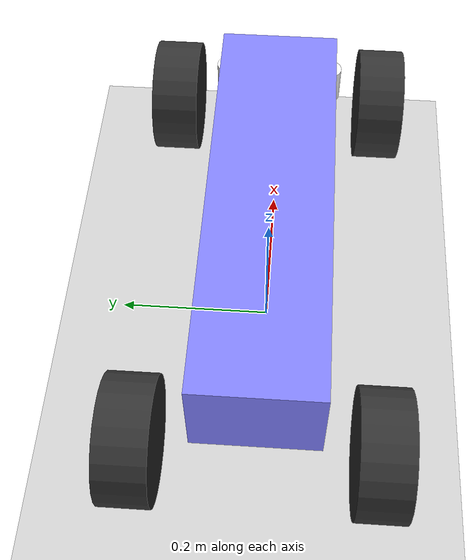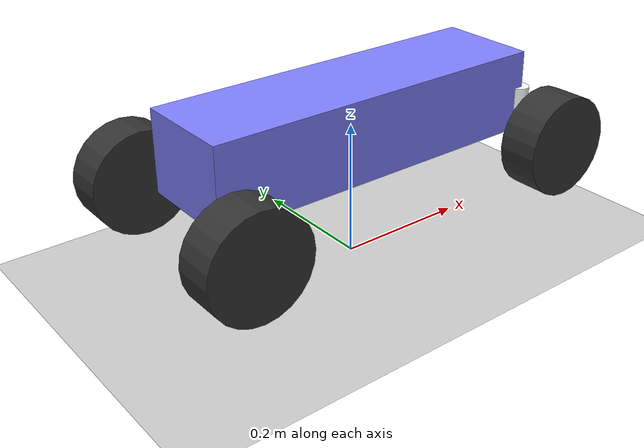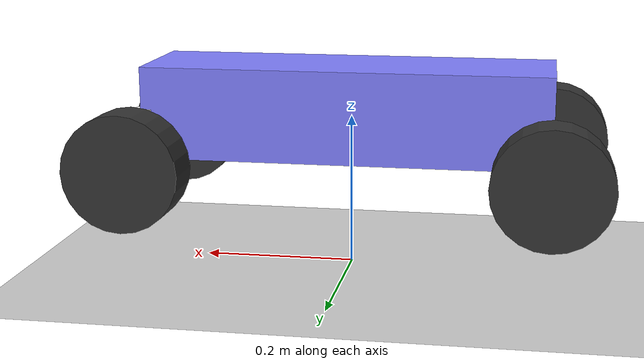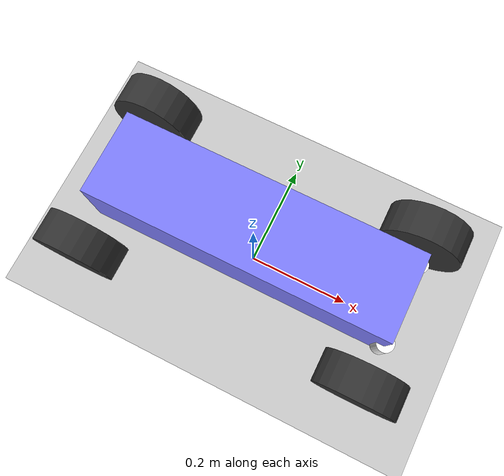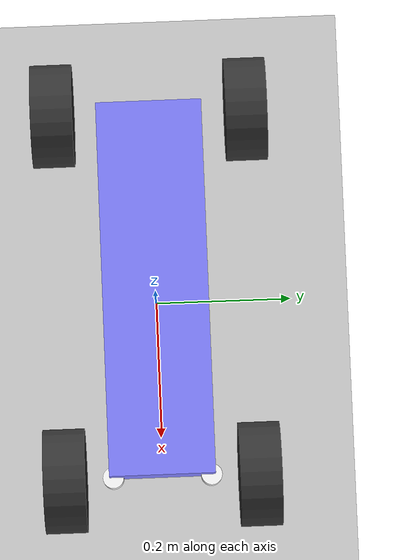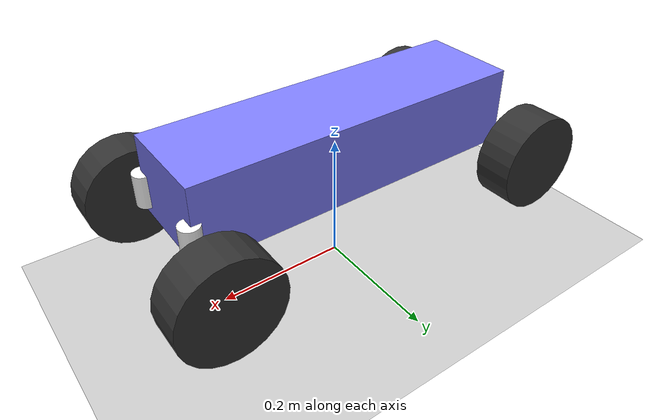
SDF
<?xml version="1.0" ?>
<sdf version="1.6">
  <world name="ackermann_steering">

    <physics name="1ms" type="ignored">
      <max_step_size>0.001</max_step_size>
      <real_time_factor>1.0</real_time_factor>
    </physics>
    <plugin
      filename="ignition-gazebo-physics-system"
      name="gz::sim::systems::Physics">
    </plugin>
    <plugin
      filename="ignition-gazebo-user-commands-system"
      name="gz::sim::systems::UserCommands">
    </plugin>
    <plugin
      filename="ignition-gazebo-scene-broadcaster-system"
      name="gz::sim::systems::SceneBroadcaster">
    </plugin>

    <light type="directional" name="sun">
      <cast_shadows>true</cast_shadows>
      <pose>0 0 10 0 0 0</pose>
      <diffuse>1 1 1 1</diffuse>
      <specular>0.5 0.5 0.5 1</specular>
      <attenuation>
        <range>1000</range>
        <constant>0.9</constant>
        <linear>0.01</linear>
        <quadratic>0.001</quadratic>
      </attenuation>
      <direction>-0.5 0.1 -0.9</direction>
    </light>

    <model name="ground_plane">
      <static>true</static>
      <link name="link">
        <collision name="collision">
          <geometry>
            <plane>
              <normal>0 0 1</normal>
              <size>100 100</size>
            </plane>
          </geometry>
          <surface>
            <friction>
              <ode>
                <mu>50</mu>
              </ode>
            </friction>
          </surface>
        </collision>
        <visual name="visual">
          <geometry>
            <plane>
              <normal>0 0 1</normal>
              <size>100 100</size>
            </plane>
          </geometry>
          <material>
            <ambient>0.8 0.8 0.8 1</ambient>
            <diffuse>0.8 0.8 0.8 1</diffuse>
            <specular>0.8 0.8 0.8 1</specular>
          </material>
        </visual>
      </link>
    </model>

    <model name='JetTec'>
      <pose>0 0 0.15 0 -0 0</pose>

      <link name='chassis'>
        <pose>0 -0 0.06 0 -0 0</pose>
        <inertial>
          <mass>2.5</mass>
          <inertia>
            <ixx>0.126164</ixx>
            <ixy>0</ixy>
            <ixz>0</ixz>
            <iyy>0.416519</iyy>
            <iyz>0</iyz>
            <izz>0.481014</izz>
          </inertia>
        </inertial>
        <visual name='visual'>
          <geometry>
            <box>
              <size>0.53 0.15 0.12</size>
            </box>
          </geometry>
          <material>
            <ambient>0.5 0.5 1.0 1</ambient>
            <diffuse>0.5 0.5 1.0 1</diffuse>
            <specular>0.0 0.0 1.0 1</specular>
          </material>
        </visual>
        <collision name='collision'>
          <geometry>
            <box>
              <size>0.53 0.15 0.12</size>
            </box>
          </geometry>
        </collision>
      </link>

      <link name='front_left_wheel'>
        <pose relative_to="chassis">0.265 0.14 -0.06 -1.5707 0 0</pose>
        <inertial>
          <mass>0.3</mass>
          <inertia>
            <ixx>0.145833</ixx>
            <ixy>0</ixy>
            <ixz>0</ixz>
            <iyy>0.145833</iyy>
            <iyz>0</iyz>
            <izz>0.125</izz>
          </inertia>
        </inertial>
        <visual name='visual'>
          <geometry>
            <cylinder>
              <length>0.06</length>
              <radius>0.075</radius>
            </cylinder>
          </geometry>
          <material>
            <ambient>0.2 0.2 0.2 1</ambient>
            <diffuse>0.2 0.2 0.2 1</diffuse>
            <specular>0.2 0.2 0.2 1</specular>
          </material>
        </visual>
        <collision name='collision'>
          <geometry>
            <cylinder>
              <length>0.06</length>
              <radius>0.075</radius>
            </cylinder>
          </geometry>
          <surface>
            <friction>
              <ode>
                <mu>0.5</mu>
                <mu2>1.0</mu2>
                <fdir1>0 0 1</fdir1>
              </ode>
            </friction>
          </surface>
        </collision>
      </link>

      <link name='rear_left_wheel'>
        <pose relative_to="chassis">-0.265 0.14 -0.06 -1.5707 0 0</pose>
        <inertial>
          <mass>0.3</mass>
          <inertia>
            <ixx>0.145833</ixx>
            <ixy>0</ixy>
            <ixz>0</ixz>
            <iyy>0.145833</iyy>
            <iyz>0</iyz>
            <izz>0.125</izz>
          </inertia>
        </inertial>
        <visual name='visual'>
          <geometry>
            <cylinder>
              <length>0.06</length>
              <radius>0.075</radius>
            </cylinder>
          </geometry>
          <material>
            <ambient>0.2 0.2 0.2 1</ambient>
            <diffuse>0.2 0.2 0.2 1</diffuse>
            <specular>0.2 0.2 0.2 1</specular>
          </material>
        </visual>
        <collision name='collision'>
          <geometry>
            <cylinder>
              <length>0.06</length>
              <radius>0.075</radius>
            </cylinder>
          </geometry>
          <surface>
            <friction>
              <ode>
                <mu>0.5</mu>
                <mu2>1.0</mu2>
                <fdir1>0 0 1</fdir1>
              </ode>
            </friction>
          </surface>
        </collision>
      </link>

      <link name='front_right_wheel'>
        <pose relative_to="chassis">0.265 -0.14 -0.06 -1.5707 0 0</pose>
        <inertial>
          <mass>0.3</mass>
          <inertia>
            <ixx>0.145833</ixx>
            <ixy>0</ixy>
            <ixz>0</ixz>
            <iyy>0.145833</iyy>
            <iyz>0</iyz>
            <izz>0.125</izz>
          </inertia>
        </inertial>
        <visual name='visual'>
          <geometry>
            <cylinder>
              <length>0.06</length>
              <radius>0.075</radius>
            </cylinder>
          </geometry>
          <material>
            <ambient>0.2 0.2 0.2 1</ambient>
            <diffuse>0.2 0.2 0.2 1</diffuse>
            <specular>0.2 0.2 0.2 1</specular>
          </material>
        </visual>
        <collision name='collision'>
          <geometry>
            <cylinder>
              <length>0.06</length>
              <radius>0.075</radius>
            </cylinder>
          </geometry>
          <surface>
            <friction>
              <ode>
                <mu>0.5</mu>
                <mu2>1.0</mu2>
                <fdir1>0 0 1</fdir1>
              </ode>
            </friction>
          </surface>
        </collision>
      </link>

      <link name='rear_right_wheel'>
        <pose relative_to="chassis">-0.265 -0.14 -0.06 -1.5707 0 0</pose>
        <inertial>
          <mass>0.3</mass>
          <inertia>
            <ixx>0.145833</ixx>
            <ixy>0</ixy>
            <ixz>0</ixz>
            <iyy>0.145833</iyy>
            <iyz>0</iyz>
            <izz>0.125</izz>
          </inertia>
        </inertial>
        <visual name='visual'>
          <geometry>
            <cylinder>
              <length>0.06</length>
              <radius>0.075</radius>
            </cylinder>
          </geometry>
          <material>
            <ambient>0.2 0.2 0.2 1</ambient>
            <diffuse>0.2 0.2 0.2 1</diffuse>
            <specular>0.2 0.2 0.2 1</specular>
          </material>
        </visual>
        <collision name='collision'>
          <geometry>
            <cylinder>
              <length>0.06</length>
              <radius>0.075</radius>
            </cylinder>
          </geometry>
          <surface>
            <friction>
              <ode>
                <mu>0.5</mu>
                <mu2>1.0</mu2>
                <fdir1>0 0 1</fdir1>
              </ode>
            </friction>
          </surface>
        </collision>
      </link>

      <link name="front_left_wheel_steering_link">
        <pose relative_to="chassis">0.265 0.07 -0.02 0 0 0</pose>
        <inertial>
          <mass>0.5</mass>
          <inertia>
            <ixx>0.0153</ixx>
            <iyy>0.025</iyy>
            <izz>0.0153</izz>
          </inertia>
        </inertial>
        <visual name="steering_link_visual">
          <pose>0 0 0 0 0 0</pose>
          <geometry>
            <cylinder>
              <length>0.05</length>
              <radius>0.015</radius>
            </cylinder>
          </geometry>
          <material>
            <ambient>1 1 1</ambient>
            <diffuse>1 1 1</diffuse>
          </material>
        </visual>
      </link>

      <link name="front_right_wheel_steering_link">
        <pose relative_to="chassis">0.265 -0.07 -0.02 0 0 0</pose>
        <inertial>
          <mass>0.5</mass>
          <inertia>
            <ixx>0.0153</ixx>
            <iyy>0.025</iyy>
            <izz>0.0153</izz>
          </inertia>
        </inertial>
        <visual name="steering_link_visual">
          <pose>0 0 0 0 0 0</pose>
          <geometry>
            <cylinder>
              <length>0.05</length>
              <radius>0.015</radius>
            </cylinder>
          </geometry>
          <material>
            <ambient>1 1 1</ambient>
            <diffuse>1 1 1</diffuse>
          </material>
        </visual>
      </link>

      <joint name="front_left_wheel_steering_joint" type="revolute">
        <child>front_left_wheel_steering_link</child>
        <parent>chassis</parent>
        <axis>
          <xyz>0 0 1</xyz>
          <limit>
            <lower>-0.6</lower>
            <upper>+0.6</upper>
            <velocity>1.0</velocity>
            <effort>25</effort>
          </limit>
          <use_parent_model_frame>1</use_parent_model_frame>
        </axis>
      </joint>

      <joint name="front_right_wheel_steering_joint" type="revolute">
        <parent>chassis</parent>
        <child>front_right_wheel_steering_link</child>
        <axis>
          <xyz>0 0 1</xyz>
          <limit>
            <lower>-0.6</lower>
            <upper>+0.6</upper>
            <velocity>1.0</velocity>
            <effort>25</effort>
          </limit>
        </axis>
      </joint>

      <joint name='front_left_wheel_joint' type='revolute'>
        <parent>front_left_wheel_steering_link</parent>
        <child>front_left_wheel</child>
        <axis>
          <xyz>0 0 1</xyz>
          <limit>
            <lower>-1.79769e+308</lower>
            <upper>1.79769e+308</upper>
          </limit>
        </axis>
      </joint>

      <joint name='front_right_wheel_joint' type='revolute'>
        <parent>front_right_wheel_steering_link</parent>
        <child>front_right_wheel</child>
        <axis>
          <xyz>0 0 1</xyz>
          <limit>
            <lower>-1.79769e+308</lower>
            <upper>1.79769e+308</upper>
          </limit>
        </axis>
      </joint>

      <joint name='rear_left_wheel_joint' type='revolute'>
        <parent>chassis</parent>
        <child>rear_left_wheel</child>
        <axis>
          <xyz>0 0 1</xyz>
          <limit>
            <lower>-1.79769e+308</lower>
            <upper>1.79769e+308</upper>
          </limit>
        </axis>
      </joint>

      <joint name='rear_right_wheel_joint' type='revolute'>
        <parent>chassis</parent>
        <child>rear_right_wheel</child>
        <axis>
          <xyz>0 0 1</xyz>
          <limit>
            <lower>-1.79769e+308</lower>
            <upper>1.79769e+308</upper>
          </limit>
        </axis>
      </joint>

      <plugin
        filename="ignition-gazebo-ackermann-steering-system"
        name="gz::sim::systems::AckermannSteering">
        <left_joint>front_left_wheel_joint</left_joint>
        <left_joint>rear_left_wheel_joint</left_joint>
        <right_joint>front_right_wheel_joint</right_joint>
        <right_joint>rear_right_wheel_joint</right_joint>
        <left_steering_joint>front_left_wheel_steering_joint</left_steering_joint>
        <right_steering_joint>front_right_wheel_steering_joint</right_steering_joint>
        <kingpin_width>1.0</kingpin_width>
        <steering_limit>0.5</steering_limit>
        <wheel_base>1.0</wheel_base>
        <wheel_separation>1.25</wheel_separation>
        <wheel_radius>0.3</wheel_radius>
        <min_velocity>-1</min_velocity>
        <max_velocity>1</max_velocity>
        <min_acceleration>-3</min_acceleration>
        <max_acceleration>3</max_acceleration>
      </plugin>

      <plugin
    	filename="gz-sim-diff-drive-system"
    	name="gz::sim::systems::DiffDrive">
    	<left_joint>left_wheel_joint</left_joint>
    	<right_joint>right_wheel_joint</right_joint>
    	<wheel_separation>1.2</wheel_separation>
    	<wheel_radius>0.4</wheel_radius>
    	<odom_publish_frequency>1</odom_publish_frequency>
    	<topic>cmd_vel</topic>
      </plugin>

    </model>

  </world>
</sdf>
